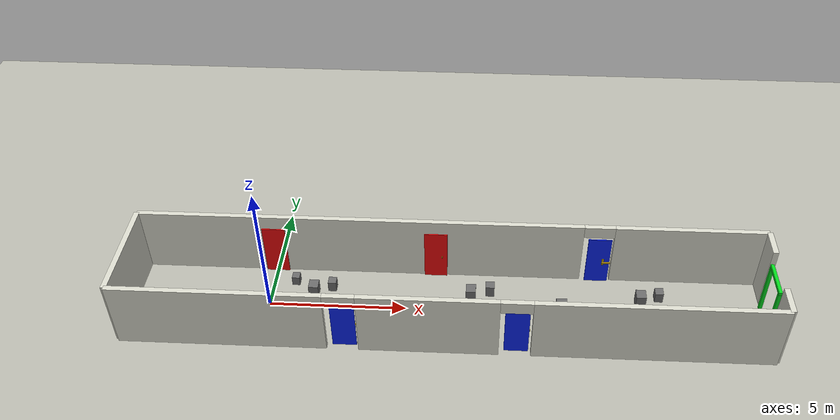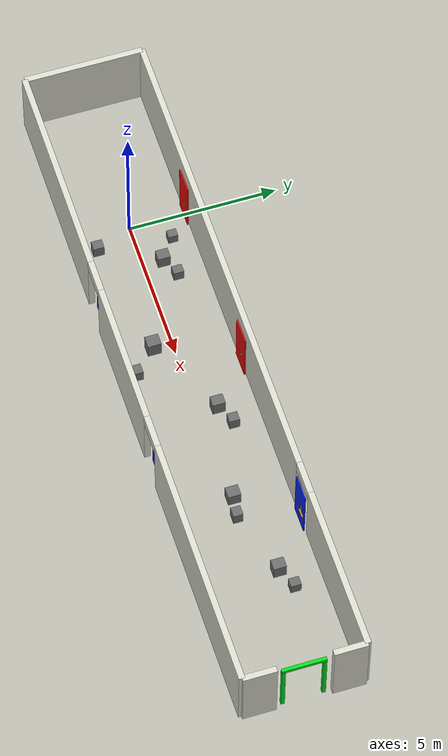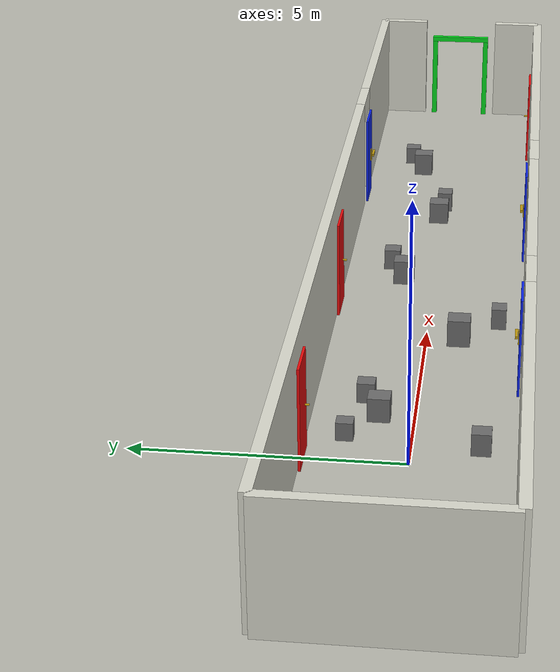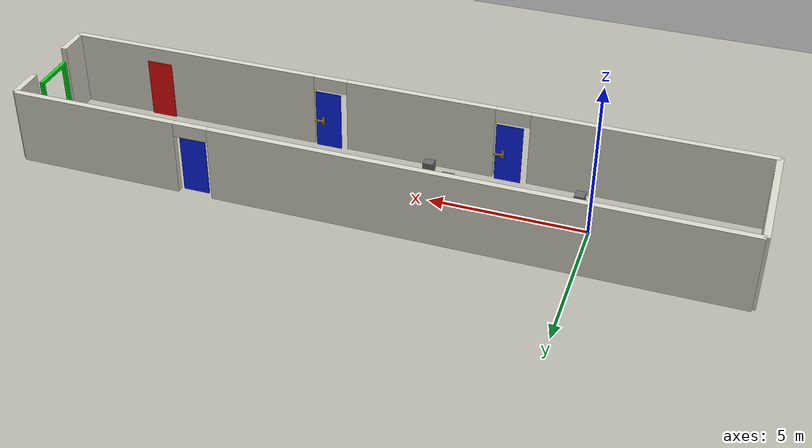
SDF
<?xml version='1.0' encoding='utf-8'?>
<sdf version="1.6">
  <world name="fire_corridor">
    <physics name="default_physics" type="ode">
      <max_step_size>0.001</max_step_size>
      <real_time_update_rate>1000</real_time_update_rate>
    </physics>
    <plugin name="gz::sim::systems::Physics" filename="gz-sim-physics-system" />
    <plugin name="gz::sim::systems::UserCommands" filename="gz-sim-user-commands-system" />
    <plugin name="gz::sim::systems::SceneBroadcaster" filename="gz-sim-scene-broadcaster-system" />
    <plugin name="gz::sim::systems::Sensors" filename="gz-sim-sensors-system"><render_engine>ogre2</render_engine></plugin>
    <light type="directional" name="sun">
      <cast_shadows>true</cast_shadows>
      <pose>6 0 10 0 0 0</pose>
      <diffuse>0.9 0.9 0.9 1</diffuse>
      <specular>0.3 0.3 0.3 1</specular>
      <direction>-0.5 0.1 -1</direction>
    </light>
    <light type="point" name="light_mid">
      <pose>8 0 2.8 0 0 0</pose>
      <diffuse>0.8 0.8 0.8 1</diffuse>
      <specular>0.1 0.1 0.1 1</specular>
      <attenuation><range>16</range><linear>0.05</linear></attenuation>
    </light>

    <model name="ground_plane">
      <static>true</static>
      <link name="link">
        <collision name="col"><geometry><plane><normal>0 0 1</normal><size>30 10</size></plane></geometry></collision>
        <visual name="vis"><geometry><plane><normal>0 0 1</normal><size>30 10</size></plane></geometry>
          <material><ambient>0.72 0.72 0.68 1</ambient><diffuse>0.72 0.72 0.68 1</diffuse></material>
        </visual>
      </link>
    </model>

    <model name="wall_south">
  <static>true</static>
  <pose>6.5 -2 1.25 0 0 0</pose>
  <link name="link">
    <collision name="collision_wall_0">
      <geometry>
        <box>
          <size>7.388571 0.200000 2.500000</size>
        </box>
      </geometry>
      <pose>-7.805714 0 0.000000 0 0 0</pose>
    </collision>
    <visual name="visual_wall_0">
      <geometry>
        <box>
          <size>7.388571 0.200000 2.500000</size>
        </box>
      </geometry>
      <material>
        <ambient>0.85 0.85 0.80 1</ambient>
        <diffuse>0.85 0.85 0.80 1</diffuse>
      </material>
      <pose>-7.805714 0 0.000000 0 0 0</pose>
    </visual>
    <collision name="collision_lintel_0">
      <geometry>
        <box>
          <size>1.116429 0.200000 0.450000</size>
        </box>
      </geometry>
      <pose>-3.553214 0 1.025000 0 0 0</pose>
    </collision>
    <visual name="visual_lintel_0">
      <geometry>
        <box>
          <size>1.116429 0.200000 0.450000</size>
        </box>
      </geometry>
      <material>
        <ambient>0.85 0.85 0.80 1</ambient>
        <diffuse>0.85 0.85 0.80 1</diffuse>
      </material>
      <pose>-3.553214 0 1.025000 0 0 0</pose>
    </visual>
    <collision name="collision_wall_1">
      <geometry>
        <box>
          <size>4.883571 0.200000 2.500000</size>
        </box>
      </geometry>
      <pose>-0.553214 0 0.000000 0 0 0</pose>
    </collision>
    <visual name="visual_wall_1">
      <geometry>
        <box>
          <size>4.883571 0.200000 2.500000</size>
        </box>
      </geometry>
      <material>
        <ambient>0.85 0.85 0.80 1</ambient>
        <diffuse>0.85 0.85 0.80 1</diffuse>
      </material>
      <pose>-0.553214 0 0.000000 0 0 0</pose>
    </visual>
    <collision name="collision_lintel_1">
      <geometry>
        <box>
          <size>1.116429 0.200000 0.450000</size>
        </box>
      </geometry>
      <pose>2.446786 0 1.025000 0 0 0</pose>
    </collision>
    <visual name="visual_lintel_1">
      <geometry>
        <box>
          <size>1.116429 0.200000 0.450000</size>
        </box>
      </geometry>
      <material>
        <ambient>0.85 0.85 0.80 1</ambient>
        <diffuse>0.85 0.85 0.80 1</diffuse>
      </material>
      <pose>2.446786 0 1.025000 0 0 0</pose>
    </visual>
    <collision name="collision_wall_end">
      <geometry>
        <box>
          <size>8.495000 0.200000 2.500000</size>
        </box>
      </geometry>
      <pose>7.252500 0 0.000000 0 0 0</pose>
    </collision>
    <visual name="visual_wall_end">
      <geometry>
        <box>
          <size>8.495000 0.200000 2.500000</size>
        </box>
      </geometry>
      <material>
        <ambient>0.85 0.85 0.80 1</ambient>
        <diffuse>0.85 0.85 0.80 1</diffuse>
      </material>
      <pose>7.252500 0 0.000000 0 0 0</pose>
    </visual>
  </link>
</model>
    <model name="wall_north">
  <static>true</static>
  <pose>6.5 2 1.25 0 0 0</pose>
  <link name="link">
    <collision name="collision_wall_0">
      <geometry>
        <box>
          <size>16.388571 0.200000 2.500000</size>
        </box>
      </geometry>
      <pose>-3.305714 0 0.000000 0 0 0</pose>
    </collision>
    <visual name="visual_wall_0">
      <geometry>
        <box>
          <size>16.388571 0.200000 2.500000</size>
        </box>
      </geometry>
      <material>
        <ambient>0.85 0.85 0.80 1</ambient>
        <diffuse>0.85 0.85 0.80 1</diffuse>
      </material>
      <pose>-3.305714 0 0.000000 0 0 0</pose>
    </visual>
    <collision name="collision_lintel_0">
      <geometry>
        <box>
          <size>1.116429 0.200000 0.450000</size>
        </box>
      </geometry>
      <pose>5.446786 0 1.025000 0 0 0</pose>
    </collision>
    <visual name="visual_lintel_0">
      <geometry>
        <box>
          <size>1.116429 0.200000 0.450000</size>
        </box>
      </geometry>
      <material>
        <ambient>0.85 0.85 0.80 1</ambient>
        <diffuse>0.85 0.85 0.80 1</diffuse>
      </material>
      <pose>5.446786 0 1.025000 0 0 0</pose>
    </visual>
    <collision name="collision_wall_end">
      <geometry>
        <box>
          <size>5.495000 0.200000 2.500000</size>
        </box>
      </geometry>
      <pose>8.752500 0 0.000000 0 0 0</pose>
    </collision>
    <visual name="visual_wall_end">
      <geometry>
        <box>
          <size>5.495000 0.200000 2.500000</size>
        </box>
      </geometry>
      <material>
        <ambient>0.85 0.85 0.80 1</ambient>
        <diffuse>0.85 0.85 0.80 1</diffuse>
      </material>
      <pose>8.752500 0 0.000000 0 0 0</pose>
    </visual>
  </link>
</model>
    <model name="wall_west"><static>true</static><pose>-5 0 1.25 0 0 0</pose><link name="link">
      <collision name="col"><geometry><box><size>0.2 4 2.5</size></box></geometry></collision>
      <visual name="vis"><geometry><box><size>0.2 4 2.5</size></box></geometry><material><ambient>0.85 0.85 0.80 1</ambient><diffuse>0.85 0.85 0.80 1</diffuse></material></visual>
    </link></model>
    <model name="wall_east_upper"><static>true</static><pose>18 1.45 1.25 0 0 0</pose><link name="link">
      <collision name="col"><geometry><box><size>0.2 1.1 2.5</size></box></geometry></collision>
      <visual name="vis"><geometry><box><size>0.2 1.1 2.5</size></box></geometry><material><ambient>0.85 0.85 0.80 1</ambient><diffuse>0.85 0.85 0.80 1</diffuse></material></visual>
    </link></model>
    <model name="wall_east_lower"><static>true</static><pose>18 -1.45 1.25 0 0 0</pose><link name="link">
      <collision name="col"><geometry><box><size>0.2 1.1 2.5</size></box></geometry></collision>
      <visual name="vis"><geometry><box><size>0.2 1.1 2.5</size></box></geometry><material><ambient>0.85 0.85 0.80 1</ambient><diffuse>0.85 0.85 0.80 1</diffuse></material></visual>
    </link></model>

    <model name="door_red1">
      <static>true</static>
      <pose>0.00 1.86 1.0 0 0 0</pose>
      <link name="link">
        <visual name="panel">
          <geometry><box><size>0.85 0.045 2.0</size></box></geometry>
          <material><ambient>0.92 0.04 0.04 1</ambient><diffuse>0.92 0.04 0.04 1</diffuse></material>
        </visual>
      </link>
    </model>
    <model name="handle_red1">
      <static>true</static>
      <pose>0.24 1.82 0.95 1.5708 0 0</pose>
      <link name="link">
        <visual name="handle"><geometry><cylinder><radius>0.018</radius><length>0.13</length></cylinder></geometry><material><ambient>0.75 0.60 0.05 1</ambient><diffuse>0.75 0.60 0.05 1</diffuse></material></visual>
      </link>
    </model>
    <model name="door_blue1">
      <static>false</static>
      <pose>3 -1.86 1 0 0 0</pose>
      <link name="panel">
        <inertial>
          <mass>2.0</mass>
          <inertia>
            <ixx>0.90</ixx><ixy>0</ixy><ixz>0</ixz>
            <iyy>0.90</iyy><iyz>0</iyz><izz>0.12</izz>
          </inertia>
        </inertial>
        <collision name="panel_collision">
          <geometry><box><size>0.85 0.045 2</size></box></geometry>
          <surface>
            <friction><ode><mu>0.8</mu><mu2>0.8</mu2></ode></friction>
          </surface>
        </collision>
        <visual name="panel">
          <geometry><box><size>0.85 0.045 2</size></box></geometry>
          <material><ambient>0.04 0.14 0.92 1</ambient><diffuse>0.04 0.14 0.92 1</diffuse></material>
        </visual>
        <collision name="handle_collision">
<pose>0.3 0.074 -0.05 0 0 0</pose>
<geometry><box><size>0.32 0.07 0.055</size></box></geometry>
        </collision>
        <visual name="handle_backplate">
<pose>0.18 0.032 -0.05 0 0 0</pose>
<geometry><box><size>0.08 0.022 0.28</size></box></geometry>
<material><ambient>0.75 0.60 0.05 1</ambient><diffuse>0.75 0.60 0.05 1</diffuse></material>
        </visual>
        <visual name="handle">
<pose>0.3 0.078 -0.05 0 0 0</pose>
<geometry><box><size>0.32 0.052 0.052</size></box></geometry>
<material><ambient>0.75 0.60 0.05 1</ambient><diffuse>0.75 0.60 0.05 1</diffuse></material>
        </visual>
      </link>
      <joint name="hinge" type="revolute">
        <pose>-0.425 0 0 0 0 0</pose>
        <parent>world</parent>
        <child>panel</child>
        <axis>
          <xyz>0 0 1</xyz>
          <limit><lower>-2.10</lower><upper>2.10</upper><effort>40</effort><velocity>1.5</velocity></limit>
          <dynamics><damping>1.0</damping><friction>0.05</friction></dynamics>
        </axis>
      </joint>
      <plugin filename="ignition-gazebo-joint-position-controller-system" name="gz::sim::systems::JointPositionController">
        <joint_name>hinge</joint_name>
        <topic>/fire_robot/door/blue/x300/yn186/sp/cmd</topic>
        <p_gain>8.0</p_gain>
        <d_gain>0.4</d_gain>
        <cmd_max>60</cmd_max>
        <cmd_min>-60</cmd_min>
      </plugin>
    </model>
    <model name="door_red2">
      <static>true</static>
      <pose>6.00 1.86 1.0 0 0 0</pose>
      <link name="link">
        <visual name="panel">
          <geometry><box><size>0.85 0.045 2.0</size></box></geometry>
          <material><ambient>0.92 0.04 0.04 1</ambient><diffuse>0.92 0.04 0.04 1</diffuse></material>
        </visual>
      </link>
    </model>
    <model name="handle_red2">
      <static>true</static>
      <pose>6.24 1.82 0.95 1.5708 0 0</pose>
      <link name="link">
        <visual name="handle"><geometry><cylinder><radius>0.018</radius><length>0.13</length></cylinder></geometry><material><ambient>0.75 0.60 0.05 1</ambient><diffuse>0.75 0.60 0.05 1</diffuse></material></visual>
      </link>
    </model>
    <model name="door_blue2">
      <static>false</static>
      <pose>9 -1.86 1 0 0 0</pose>
      <link name="panel">
        <inertial>
          <mass>2.0</mass>
          <inertia>
            <ixx>0.90</ixx><ixy>0</ixy><ixz>0</ixz>
            <iyy>0.90</iyy><iyz>0</iyz><izz>0.12</izz>
          </inertia>
        </inertial>
        <collision name="panel_collision">
          <geometry><box><size>0.85 0.045 2</size></box></geometry>
          <surface>
            <friction><ode><mu>0.8</mu><mu2>0.8</mu2></ode></friction>
          </surface>
        </collision>
        <visual name="panel">
          <geometry><box><size>0.85 0.045 2</size></box></geometry>
          <material><ambient>0.04 0.14 0.92 1</ambient><diffuse>0.04 0.14 0.92 1</diffuse></material>
        </visual>
        <collision name="handle_collision">
<pose>0.3 0.074 -0.05 0 0 0</pose>
<geometry><box><size>0.32 0.07 0.055</size></box></geometry>
        </collision>
        <visual name="handle_backplate">
<pose>0.18 0.032 -0.05 0 0 0</pose>
<geometry><box><size>0.08 0.022 0.28</size></box></geometry>
<material><ambient>0.75 0.60 0.05 1</ambient><diffuse>0.75 0.60 0.05 1</diffuse></material>
        </visual>
        <visual name="handle">
<pose>0.3 0.078 -0.05 0 0 0</pose>
<geometry><box><size>0.32 0.052 0.052</size></box></geometry>
<material><ambient>0.75 0.60 0.05 1</ambient><diffuse>0.75 0.60 0.05 1</diffuse></material>
        </visual>
      </link>
      <joint name="hinge" type="revolute">
        <pose>-0.425 0 0 0 0 0</pose>
        <parent>world</parent>
        <child>panel</child>
        <axis>
          <xyz>0 0 1</xyz>
          <limit><lower>-2.10</lower><upper>2.10</upper><effort>40</effort><velocity>1.5</velocity></limit>
          <dynamics><damping>1.0</damping><friction>0.05</friction></dynamics>
        </axis>
      </joint>
      <plugin filename="ignition-gazebo-joint-position-controller-system" name="gz::sim::systems::JointPositionController">
        <joint_name>hinge</joint_name>
        <topic>/fire_robot/door/blue/x900/yn186/sp/cmd</topic>
        <p_gain>8.0</p_gain>
        <d_gain>0.4</d_gain>
        <cmd_max>60</cmd_max>
        <cmd_min>-60</cmd_min>
      </plugin>
    </model>
    <model name="door_blue3">
      <static>false</static>
      <pose>12 1.86 1 0 0 0</pose>
      <link name="panel">
        <inertial>
          <mass>2.0</mass>
          <inertia>
            <ixx>0.90</ixx><ixy>0</ixy><ixz>0</ixz>
            <iyy>0.90</iyy><iyz>0</iyz><izz>0.12</izz>
          </inertia>
        </inertial>
        <collision name="panel_collision">
          <geometry><box><size>0.85 0.045 2</size></box></geometry>
          <surface>
            <friction><ode><mu>0.8</mu><mu2>0.8</mu2></ode></friction>
          </surface>
        </collision>
        <visual name="panel">
          <geometry><box><size>0.85 0.045 2</size></box></geometry>
          <material><ambient>0.04 0.14 0.92 1</ambient><diffuse>0.04 0.14 0.92 1</diffuse></material>
        </visual>
        <collision name="handle_collision">
<pose>0.3 -0.074 -0.05 0 0 0</pose>
<geometry><box><size>0.32 0.07 0.055</size></box></geometry>
        </collision>
        <visual name="handle_backplate">
<pose>0.18 -0.032 -0.05 0 0 0</pose>
<geometry><box><size>0.08 0.022 0.28</size></box></geometry>
<material><ambient>0.75 0.60 0.05 1</ambient><diffuse>0.75 0.60 0.05 1</diffuse></material>
        </visual>
        <visual name="handle">
<pose>0.3 -0.078 -0.05 0 0 0</pose>
<geometry><box><size>0.32 0.052 0.052</size></box></geometry>
<material><ambient>0.75 0.60 0.05 1</ambient><diffuse>0.75 0.60 0.05 1</diffuse></material>
        </visual>
      </link>
      <joint name="hinge" type="revolute">
        <pose>-0.425 0 0 0 0 0</pose>
        <parent>world</parent>
        <child>panel</child>
        <axis>
          <xyz>0 0 1</xyz>
          <limit><lower>-2.10</lower><upper>2.10</upper><effort>40</effort><velocity>1.5</velocity></limit>
          <dynamics><damping>1.0</damping><friction>0.05</friction></dynamics>
        </axis>
      </joint>
      <plugin filename="ignition-gazebo-joint-position-controller-system" name="gz::sim::systems::JointPositionController">
        <joint_name>hinge</joint_name>
        <topic>/fire_robot/door/blue/x1200/yp186/sn/cmd</topic>
        <p_gain>8.0</p_gain>
        <d_gain>0.4</d_gain>
        <cmd_max>60</cmd_max>
        <cmd_min>-60</cmd_min>
      </plugin>
    </model>
    <model name="door_red3">
      <static>true</static>
      <pose>15.00 -1.86 1.0 0 0 0</pose>
      <link name="link">
        <visual name="panel">
          <geometry><box><size>0.85 0.045 2.0</size></box></geometry>
          <material><ambient>0.92 0.04 0.04 1</ambient><diffuse>0.92 0.04 0.04 1</diffuse></material>
        </visual>
      </link>
    </model>
    <model name="handle_red3">
      <static>true</static>
      <pose>15.24 -1.82 0.95 1.5708 0 0</pose>
      <link name="link">
        <visual name="handle"><geometry><cylinder><radius>0.018</radius><length>0.13</length></cylinder></geometry><material><ambient>0.75 0.60 0.05 1</ambient><diffuse>0.75 0.60 0.05 1</diffuse></material></visual>
      </link>
    </model>
    <model name="exit_green">
      <static>true</static>
      <pose>17.92 0 1.0 0 0 0</pose>
      <link name="link">
        <visual name="jamb_left"><pose>0.0 0.66 0.0 0.0 0.0 0.0</pose><geometry><box><size>0.12 0.12 2.0</size></box></geometry><material><ambient>0.02 0.85 0.12 1</ambient><diffuse>0.02 0.85 0.12 1</diffuse></material></visual><collision name="jamb_left"><pose>0.0 0.66 0.0 0.0 0.0 0.0</pose><geometry><box><size>0.12 0.12 2.0</size></box></geometry></collision><visual name="jamb_right"><pose>0.0 -0.66 0.0 0.0 0.0 0.0</pose><geometry><box><size>0.12 0.12 2.0</size></box></geometry><material><ambient>0.02 0.85 0.12 1</ambient><diffuse>0.02 0.85 0.12 1</diffuse></material></visual><collision name="jamb_right"><pose>0.0 -0.66 0.0 0.0 0.0 0.0</pose><geometry><box><size>0.12 0.12 2.0</size></box></geometry></collision><visual name="lintel"><pose>0.0 0.0 1.06 0.0 0.0 0.0</pose><geometry><box><size>0.12 1.44 0.12</size></box></geometry><material><ambient>0.02 0.85 0.12 1</ambient><diffuse>0.02 0.85 0.12 1</diffuse></material></visual><collision name="lintel"><pose>0.0 0.0 1.06 0.0 0.0 0.0</pose><geometry><box><size>0.12 1.44 0.12</size></box></geometry></collision></link>
    </model>
    <model name="v5_center_block_00_start">
      <static>true</static>
      <pose>0.55 -1.25 0.22 0 0 0</pose>
      <link name="link">
        <collision name="col"><geometry><box><size>0.32 0.36 0.44</size></box></geometry></collision>
        <visual name="vis">
          <geometry><box><size>0.32 0.36 0.44</size></box></geometry>
          <material><ambient>0.42 0.42 0.42 1</ambient><diffuse>0.42 0.42 0.42 1</diffuse></material>
        </visual>
      </link>
    </model>
    <model name="v5_center_block_01_pre_blue1">
      <static>true</static>
      <pose>1.55 0.65 0.24 0 0 0</pose>
      <link name="link">
        <collision name="col"><geometry><box><size>0.36 0.42 0.48</size></box></geometry></collision>
        <visual name="vis">
          <geometry><box><size>0.36 0.42 0.48</size></box></geometry>
          <material><ambient>0.42 0.42 0.42 1</ambient><diffuse>0.42 0.42 0.42 1</diffuse></material>
        </visual>
      </link>
    </model>
    <model name="v5_center_block_02_between_blue1_blue2">
      <static>true</static>
      <pose>4.65 -0.65 0.28 0 0 0</pose>
      <link name="link">
        <collision name="col"><geometry><box><size>0.40 0.45 0.56</size></box></geometry></collision>
        <visual name="vis">
          <geometry><box><size>0.40 0.45 0.56</size></box></geometry>
          <material><ambient>0.42 0.42 0.42 1</ambient><diffuse>0.42 0.42 0.42 1</diffuse></material>
        </visual>
      </link>
    </model>
    <model name="v5_center_block_03_pre_blue2">
      <static>true</static>
      <pose>7.35 0.65 0.26 0 0 0</pose>
      <link name="link">
        <collision name="col"><geometry><box><size>0.36 0.42 0.52</size></box></geometry></collision>
        <visual name="vis">
          <geometry><box><size>0.36 0.42 0.52</size></box></geometry>
          <material><ambient>0.42 0.42 0.42 1</ambient><diffuse>0.42 0.42 0.42 1</diffuse></material>
        </visual>
      </link>
    </model>
    <model name="v5_center_block_04_between_blue2_blue3">
      <static>true</static>
      <pose>10.65 0.10 0.24 0 0 0</pose>
      <link name="link">
        <collision name="col"><geometry><box><size>0.38 0.42 0.48</size></box></geometry></collision>
        <visual name="vis">
          <geometry><box><size>0.38 0.42 0.48</size></box></geometry>
          <material><ambient>0.42 0.42 0.42 1</ambient><diffuse>0.42 0.42 0.42 1</diffuse></material>
        </visual>
      </link>
    </model>
    <model name="v5_center_block_05_after_blue3">
      <static>true</static>
      <pose>13.55 0.65 0.26 0 0 0</pose>
      <link name="link">
        <collision name="col"><geometry><box><size>0.36 0.42 0.52</size></box></geometry></collision>
        <visual name="vis">
          <geometry><box><size>0.36 0.42 0.52</size></box></geometry>
          <material><ambient>0.42 0.42 0.42 1</ambient><diffuse>0.42 0.42 0.42 1</diffuse></material>
        </visual>
      </link>
    </model>
    <model name="v5_side_clutter_01_right">
      <static>true</static>
      <pose>0.80 1.20 0.18 0 0 0</pose>
      <link name="link">
        <collision name="col"><geometry><box><size>0.28 0.32 0.36</size></box></geometry></collision>
        <visual name="vis">
          <geometry><box><size>0.28 0.32 0.36</size></box></geometry>
          <material><ambient>0.42 0.42 0.42 1</ambient><diffuse>0.42 0.42 0.42 1</diffuse></material>
        </visual>
      </link>
    </model>
    <model name="v5_side_clutter_02_left">
      <static>true</static>
      <pose>2.20 0.95 0.20 0 0 0</pose>
      <link name="link">
        <collision name="col"><geometry><box><size>0.30 0.34 0.40</size></box></geometry></collision>
        <visual name="vis">
          <geometry><box><size>0.30 0.34 0.40</size></box></geometry>
          <material><ambient>0.42 0.42 0.42 1</ambient><diffuse>0.42 0.42 0.42 1</diffuse></material>
        </visual>
      </link>
    </model>
    <model name="v5_side_clutter_03_right">
      <static>true</static>
      <pose>5.45 -1.42 0.22 0 0 0</pose>
      <link name="link">
        <collision name="col"><geometry><box><size>0.34 0.30 0.44</size></box></geometry></collision>
        <visual name="vis">
          <geometry><box><size>0.34 0.30 0.44</size></box></geometry>
          <material><ambient>0.42 0.42 0.42 1</ambient><diffuse>0.42 0.42 0.42 1</diffuse></material>
        </visual>
      </link>
    </model>
    <model name="v5_side_clutter_04_left">
      <static>true</static>
      <pose>8.05 0.95 0.22 0 0 0</pose>
      <link name="link">
        <collision name="col"><geometry><box><size>0.32 0.34 0.44</size></box></geometry></collision>
        <visual name="vis">
          <geometry><box><size>0.32 0.34 0.44</size></box></geometry>
          <material><ambient>0.42 0.42 0.42 1</ambient><diffuse>0.42 0.42 0.42 1</diffuse></material>
        </visual>
      </link>
    </model>
    <model name="v5_side_clutter_05_right">
      <static>true</static>
      <pose>11.35 0.00 0.22 0 0 0</pose>
      <link name="link">
        <collision name="col"><geometry><box><size>0.34 0.32 0.44</size></box></geometry></collision>
        <visual name="vis">
          <geometry><box><size>0.34 0.32 0.44</size></box></geometry>
          <material><ambient>0.42 0.42 0.42 1</ambient><diffuse>0.42 0.42 0.42 1</diffuse></material>
        </visual>
      </link>
    </model>
    <model name="v5_side_clutter_06_left">
      <static>true</static>
      <pose>14.25 0.95 0.20 0 0 0</pose>
      <link name="link">
        <collision name="col"><geometry><box><size>0.30 0.34 0.40</size></box></geometry></collision>
        <visual name="vis">
          <geometry><box><size>0.30 0.34 0.40</size></box></geometry>
          <material><ambient>0.42 0.42 0.42 1</ambient><diffuse>0.42 0.42 0.42 1</diffuse></material>
        </visual>
      </link>
    </model>
  </world>
</sdf>
